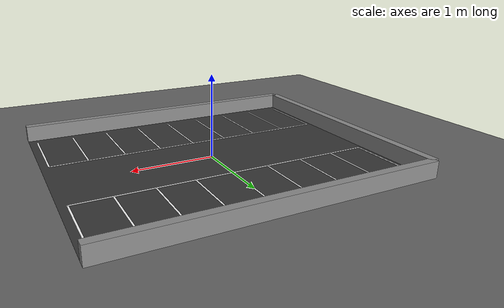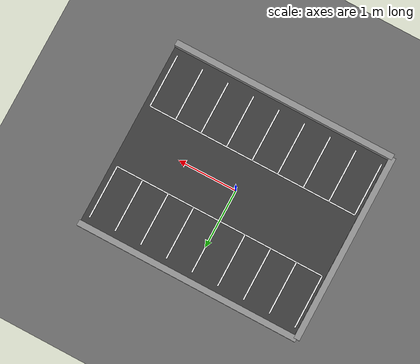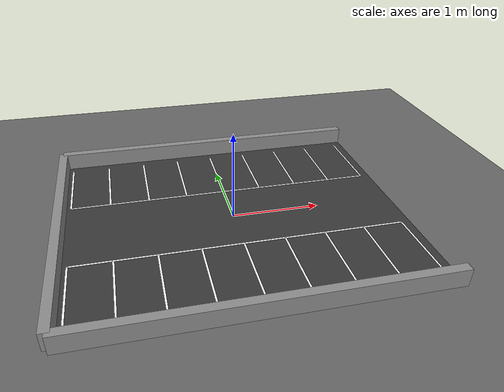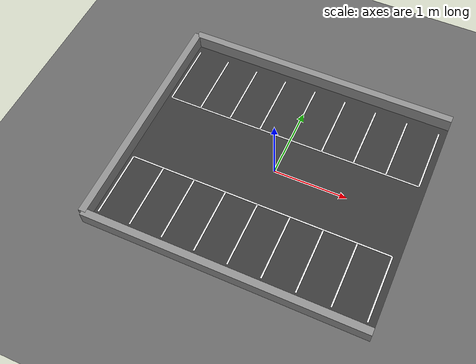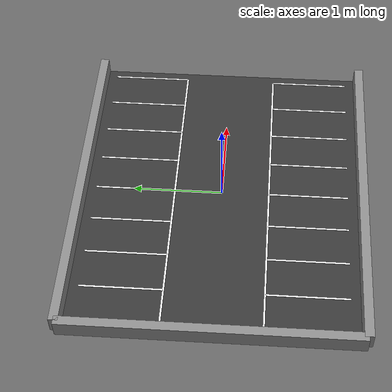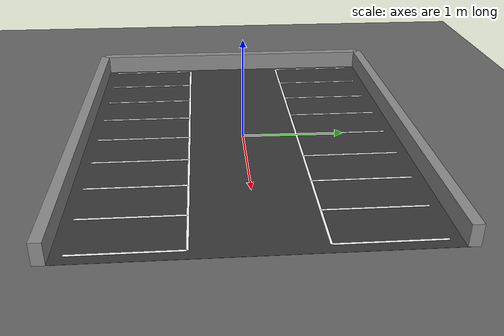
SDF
<sdf version="1.6">
 <world name="remote_parking">
  <physics name="default_physics" default="true" type="ode">
   <max_step_size>0.002</max_step_size>
   <real_time_factor>1.0</real_time_factor>
   <real_time_update_rate>500</real_time_update_rate>
   <ode>
    <solver><type>quick</type><iters>50</iters><sor>1.3</sor></solver>
    <constraints>
     <cfm>0.0</cfm>
     <erp>0.2</erp>
     <contact_max_correcting_vel>100.0</contact_max_correcting_vel>
     <contact_surface_layer>0.001</contact_surface_layer>
    </constraints>
   </ode>
  </physics>
  <plugin name="gazebo_ros_state" filename="libgazebo_ros_state.so">
   <ros><namespace>/</namespace></ros>
   <update_rate>10.0</update_rate>
  </plugin>
  <light name="sun" type="directional">
   <cast_shadows>false</cast_shadows>
   <pose>0 0 10 0 0 0</pose>
   <diffuse>0.85 0.85 0.85 1</diffuse>
   <specular>0.1 0.1 0.1 1</specular>
   <attenuation>
    <range>1000</range>
    <constant>0.9</constant>
    <linear>0.01</linear>
    <quadratic>0.001</quadratic>
   </attenuation>
   <direction>-0.5 0.1 -0.9</direction>
  </light>
  <model name="ground_plane">
   <static>true</static>
   <link name="link">
    <collision name="collision">
     <geometry><plane><normal>0 0 1</normal><size>30 30</size></plane></geometry>
     <surface><friction><ode><mu>1.0</mu><mu2>1.0</mu2></ode></friction></surface>
    </collision>
    <visual name="visual">
     <cast_shadows>false</cast_shadows>
     <geometry><plane><normal>0 0 1</normal><size>30 30</size></plane></geometry>
     <material><ambient>0.4 0.4 0.4 1</ambient><diffuse>0.4 0.4 0.4 1</diffuse></material>
    </visual>
   </link>
  </model>
  <model name="parking_asphalt">
   <static>true</static>
   <pose>0.0 0 0.001 0 0 0</pose>
   <link name="link">
    <collision name="collision"><geometry><box><size>3.8 3.17 0.002</size></box></geometry></collision>
    <visual name="visual">
     <cast_shadows>false</cast_shadows>
     <geometry><box><size>3.8 3.17 0.002</size></box></geometry>
     <material><ambient>0.22 0.22 0.22 1</ambient><diffuse>0.22 0.22 0.22 1</diffuse></material>
    </visual>
   </link>
  </model>
  <model name="wall_north">
   <static>true</static>
   <pose>0.0 1.585 0.10 0 0 0</pose>
   <link name="link">
    <collision name="collision"><geometry><box><size>3.8 0.10 0.20</size></box></geometry></collision>
    <visual name="visual">
     <cast_shadows>false</cast_shadows>
     <geometry><box><size>3.8 0.10 0.20</size></box></geometry>
     <material><ambient>0.55 0.55 0.55 1</ambient><diffuse>0.55 0.55 0.55 1</diffuse></material>
    </visual>
   </link>
  </model>
  <model name="wall_south">
   <static>true</static>
   <pose>0.0 -1.585 0.10 0 0 0</pose>
   <link name="link">
    <collision name="collision"><geometry><box><size>3.8 0.10 0.20</size></box></geometry></collision>
    <visual name="visual">
     <cast_shadows>false</cast_shadows>
     <geometry><box><size>3.8 0.10 0.20</size></box></geometry>
     <material><ambient>0.55 0.55 0.55 1</ambient><diffuse>0.55 0.55 0.55 1</diffuse></material>
    </visual>
   </link>
  </model>
  <model name="wall_west">
   <static>true</static>
   <pose>-1.90 0 0.10 0 0 0</pose>
   <link name="link">
    <collision name="collision"><geometry><box><size>0.10 3.17 0.20</size></box></geometry></collision>
    <visual name="visual">
     <cast_shadows>false</cast_shadows>
     <geometry><box><size>0.10 3.17 0.20</size></box></geometry>
     <material><ambient>0.55 0.55 0.55 1</ambient><diffuse>0.55 0.55 0.55 1</diffuse></material>
    </visual>
   </link>
  </model>
  <model name="line_lane_north">
   <static>true</static>
   <pose>0.0 0.535 0.003 0 0 0</pose>
   <link name="link">
    <collision name="collision"><geometry><box><size>3.60 0.02 0.002</size></box></geometry></collision>
    <visual name="visual">
     <cast_shadows>false</cast_shadows>
     <geometry><box><size>3.60 0.02 0.002</size></box></geometry>
     <material><ambient>1 1 1 1</ambient><diffuse>1 1 1 1</diffuse></material>
    </visual>
   </link>
  </model>
  <model name="line_lane_south">
   <static>true</static>
   <pose>0.0 -0.535 0.003 0 0 0</pose>
   <link name="link">
    <collision name="collision"><geometry><box><size>3.60 0.02 0.002</size></box></geometry></collision>
    <visual name="visual">
     <cast_shadows>false</cast_shadows>
     <geometry><box><size>3.60 0.02 0.002</size></box></geometry>
     <material><ambient>1 1 1 1</ambient><diffuse>1 1 1 1</diffuse></material>
    </visual>
   </link>
  </model>
  <model name="line_a_minus2">
   <static>true</static>
   <pose>-1.80 0.985 0.003 0 0 0</pose>
   <link name="link">
    <collision name="collision"><geometry><box><size>0.02 0.90 0.002</size></box></geometry></collision>
    <visual name="visual">
     <cast_shadows>false</cast_shadows>
     <geometry><box><size>0.02 0.90 0.002</size></box></geometry>
     <material><ambient>1 1 1 1</ambient><diffuse>1 1 1 1</diffuse></material>
    </visual>
   </link>
  </model>
  <model name="line_a_minus1">
   <static>true</static>
   <pose>-1.35 0.985 0.003 0 0 0</pose>
   <link name="link">
    <collision name="collision"><geometry><box><size>0.02 0.90 0.002</size></box></geometry></collision>
    <visual name="visual">
     <cast_shadows>false</cast_shadows>
     <geometry><box><size>0.02 0.90 0.002</size></box></geometry>
     <material><ambient>1 1 1 1</ambient><diffuse>1 1 1 1</diffuse></material>
    </visual>
   </link>
  </model>
  <model name="line_a0">
   <static>true</static>
   <pose>-0.90 0.985 0.003 0 0 0</pose>
   <link name="link">
    <collision name="collision"><geometry><box><size>0.02 0.90 0.002</size></box></geometry></collision>
    <visual name="visual">
     <cast_shadows>false</cast_shadows>
     <geometry><box><size>0.02 0.90 0.002</size></box></geometry>
     <material><ambient>1 1 1 1</ambient><diffuse>1 1 1 1</diffuse></material>
    </visual>
   </link>
  </model>
  <model name="line_a1">
   <static>true</static>
   <pose>-0.45 0.985 0.003 0 0 0</pose>
   <link name="link">
    <collision name="collision"><geometry><box><size>0.02 0.90 0.002</size></box></geometry></collision>
    <visual name="visual">
     <cast_shadows>false</cast_shadows>
     <geometry><box><size>0.02 0.90 0.002</size></box></geometry>
     <material><ambient>1 1 1 1</ambient><diffuse>1 1 1 1</diffuse></material>
    </visual>
   </link>
  </model>
  <model name="line_a2">
   <static>true</static>
   <pose>0.0 0.985 0.003 0 0 0</pose>
   <link name="link">
    <collision name="collision"><geometry><box><size>0.02 0.90 0.002</size></box></geometry></collision>
    <visual name="visual">
     <cast_shadows>false</cast_shadows>
     <geometry><box><size>0.02 0.90 0.002</size></box></geometry>
     <material><ambient>1 1 1 1</ambient><diffuse>1 1 1 1</diffuse></material>
    </visual>
   </link>
  </model>
  <model name="line_a3">
   <static>true</static>
   <pose>0.45 0.985 0.003 0 0 0</pose>
   <link name="link">
    <collision name="collision"><geometry><box><size>0.02 0.90 0.002</size></box></geometry></collision>
    <visual name="visual">
     <cast_shadows>false</cast_shadows>
     <geometry><box><size>0.02 0.90 0.002</size></box></geometry>
     <material><ambient>1 1 1 1</ambient><diffuse>1 1 1 1</diffuse></material>
    </visual>
   </link>
  </model>
  <model name="line_a4">
   <static>true</static>
   <pose>0.90 0.985 0.003 0 0 0</pose>
   <link name="link">
    <collision name="collision"><geometry><box><size>0.02 0.90 0.002</size></box></geometry></collision>
    <visual name="visual">
     <cast_shadows>false</cast_shadows>
     <geometry><box><size>0.02 0.90 0.002</size></box></geometry>
     <material><ambient>1 1 1 1</ambient><diffuse>1 1 1 1</diffuse></material>
    </visual>
   </link>
  </model>
  <model name="line_a5">
   <static>true</static>
   <pose>1.35 0.985 0.003 0 0 0</pose>
   <link name="link">
    <collision name="collision"><geometry><box><size>0.02 0.90 0.002</size></box></geometry></collision>
    <visual name="visual">
     <cast_shadows>false</cast_shadows>
     <geometry><box><size>0.02 0.90 0.002</size></box></geometry>
     <material><ambient>1 1 1 1</ambient><diffuse>1 1 1 1</diffuse></material>
    </visual>
   </link>
  </model>
  <model name="line_a6">
   <static>true</static>
   <pose>1.80 0.985 0.003 0 0 0</pose>
   <link name="link">
    <collision name="collision"><geometry><box><size>0.02 0.90 0.002</size></box></geometry></collision>
    <visual name="visual">
     <cast_shadows>false</cast_shadows>
     <geometry><box><size>0.02 0.90 0.002</size></box></geometry>
     <material><ambient>1 1 1 1</ambient><diffuse>1 1 1 1</diffuse></material>
    </visual>
   </link>
  </model>
  <model name="line_b_minus2">
   <static>true</static>
   <pose>-1.80 -0.985 0.003 0 0 0</pose>
   <link name="link">
    <collision name="collision"><geometry><box><size>0.02 0.90 0.002</size></box></geometry></collision>
    <visual name="visual">
     <cast_shadows>false</cast_shadows>
     <geometry><box><size>0.02 0.90 0.002</size></box></geometry>
     <material><ambient>1 1 1 1</ambient><diffuse>1 1 1 1</diffuse></material>
    </visual>
   </link>
  </model>
  <model name="line_b_minus1">
   <static>true</static>
   <pose>-1.35 -0.985 0.003 0 0 0</pose>
   <link name="link">
    <collision name="collision"><geometry><box><size>0.02 0.90 0.002</size></box></geometry></collision>
    <visual name="visual">
     <cast_shadows>false</cast_shadows>
     <geometry><box><size>0.02 0.90 0.002</size></box></geometry>
     <material><ambient>1 1 1 1</ambient><diffuse>1 1 1 1</diffuse></material>
    </visual>
   </link>
  </model>
  <model name="line_b0">
   <static>true</static>
   <pose>-0.90 -0.985 0.003 0 0 0</pose>
   <link name="link">
    <collision name="collision"><geometry><box><size>0.02 0.90 0.002</size></box></geometry></collision>
    <visual name="visual">
     <cast_shadows>false</cast_shadows>
     <geometry><box><size>0.02 0.90 0.002</size></box></geometry>
     <material><ambient>1 1 1 1</ambient><diffuse>1 1 1 1</diffuse></material>
    </visual>
   </link>
  </model>
  <model name="line_b1">
   <static>true</static>
   <pose>-0.45 -0.985 0.003 0 0 0</pose>
   <link name="link">
    <collision name="collision"><geometry><box><size>0.02 0.90 0.002</size></box></geometry></collision>
    <visual name="visual">
     <cast_shadows>false</cast_shadows>
     <geometry><box><size>0.02 0.90 0.002</size></box></geometry>
     <material><ambient>1 1 1 1</ambient><diffuse>1 1 1 1</diffuse></material>
    </visual>
   </link>
  </model>
  <model name="line_b2">
   <static>true</static>
   <pose>0.0 -0.985 0.003 0 0 0</pose>
   <link name="link">
    <collision name="collision"><geometry><box><size>0.02 0.90 0.002</size></box></geometry></collision>
    <visual name="visual">
     <cast_shadows>false</cast_shadows>
     <geometry><box><size>0.02 0.90 0.002</size></box></geometry>
     <material><ambient>1 1 1 1</ambient><diffuse>1 1 1 1</diffuse></material>
    </visual>
   </link>
  </model>
  <model name="line_b3">
   <static>true</static>
   <pose>0.45 -0.985 0.003 0 0 0</pose>
   <link name="link">
    <collision name="collision"><geometry><box><size>0.02 0.90 0.002</size></box></geometry></collision>
    <visual name="visual">
     <cast_shadows>false</cast_shadows>
     <geometry><box><size>0.02 0.90 0.002</size></box></geometry>
     <material><ambient>1 1 1 1</ambient><diffuse>1 1 1 1</diffuse></material>
    </visual>
   </link>
  </model>
  <model name="line_b4">
   <static>true</static>
   <pose>0.90 -0.985 0.003 0 0 0</pose>
   <link name="link">
    <collision name="collision"><geometry><box><size>0.02 0.90 0.002</size></box></geometry></collision>
    <visual name="visual">
     <cast_shadows>false</cast_shadows>
     <geometry><box><size>0.02 0.90 0.002</size></box></geometry>
     <material><ambient>1 1 1 1</ambient><diffuse>1 1 1 1</diffuse></material>
    </visual>
   </link>
  </model>
  <model name="line_b5">
   <static>true</static>
   <pose>1.35 -0.985 0.003 0 0 0</pose>
   <link name="link">
    <collision name="collision"><geometry><box><size>0.02 0.90 0.002</size></box></geometry></collision>
    <visual name="visual">
     <cast_shadows>false</cast_shadows>
     <geometry><box><size>0.02 0.90 0.002</size></box></geometry>
     <material><ambient>1 1 1 1</ambient><diffuse>1 1 1 1</diffuse></material>
    </visual>
   </link>
  </model>
  <model name="line_b6">
   <static>true</static>
   <pose>1.80 -0.985 0.003 0 0 0</pose>
   <link name="link">
    <collision name="collision"><geometry><box><size>0.02 0.90 0.002</size></box></geometry></collision>
    <visual name="visual">
     <cast_shadows>false</cast_shadows>
     <geometry><box><size>0.02 0.90 0.002</size></box></geometry>
     <material><ambient>1 1 1 1</ambient><diffuse>1 1 1 1</diffuse></material>
    </visual>
   </link>
  </model>
 </world>
</sdf>
